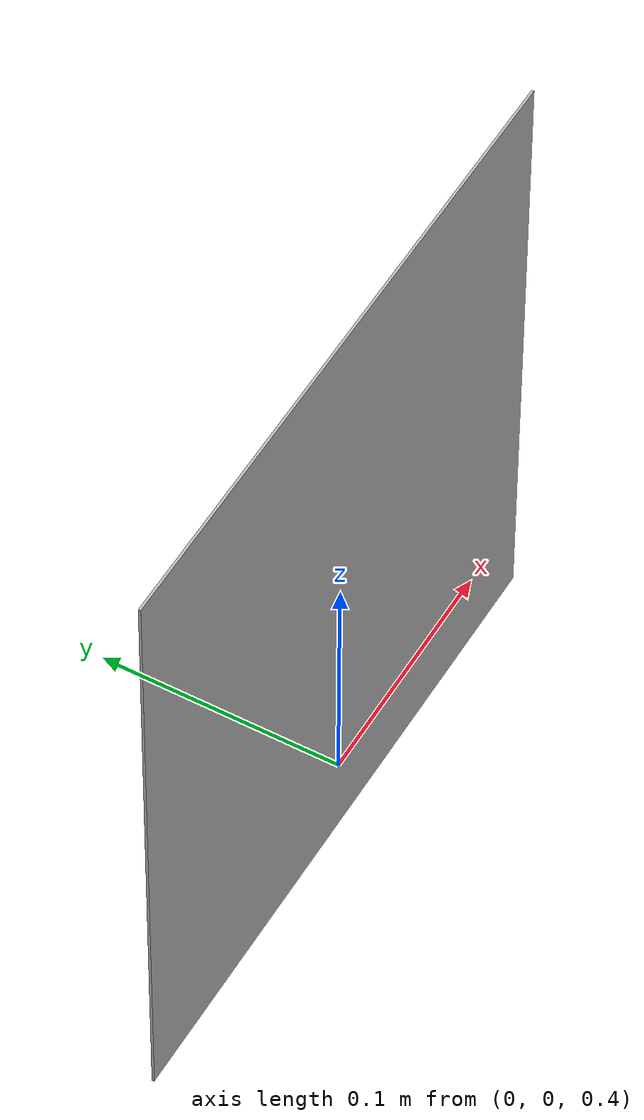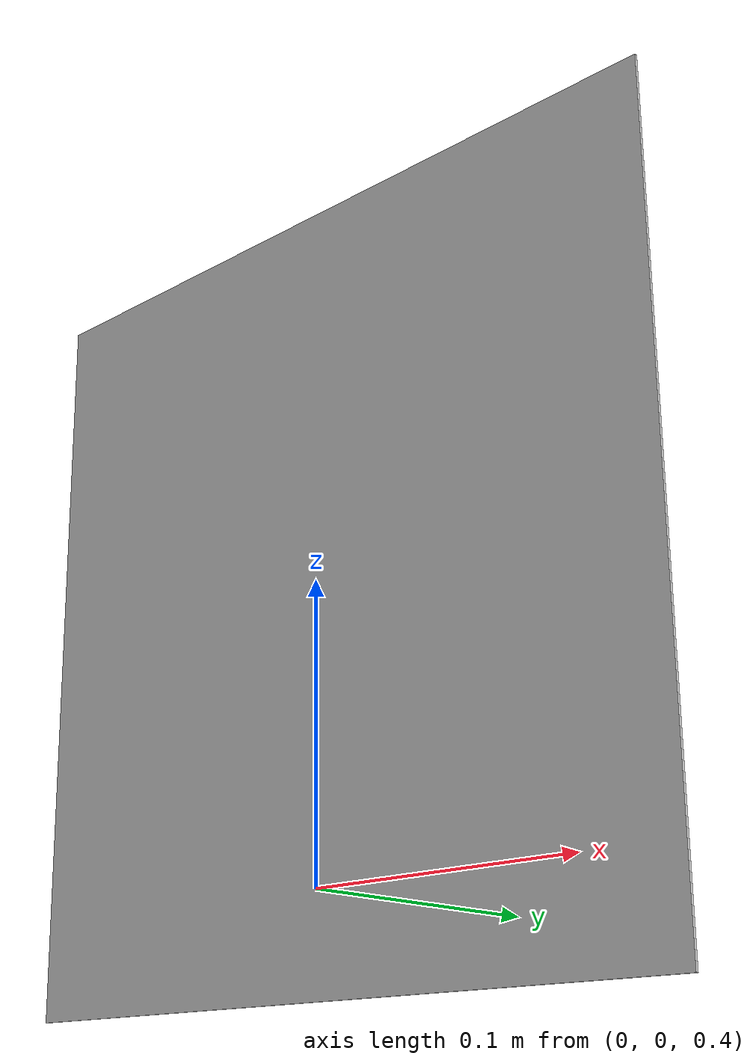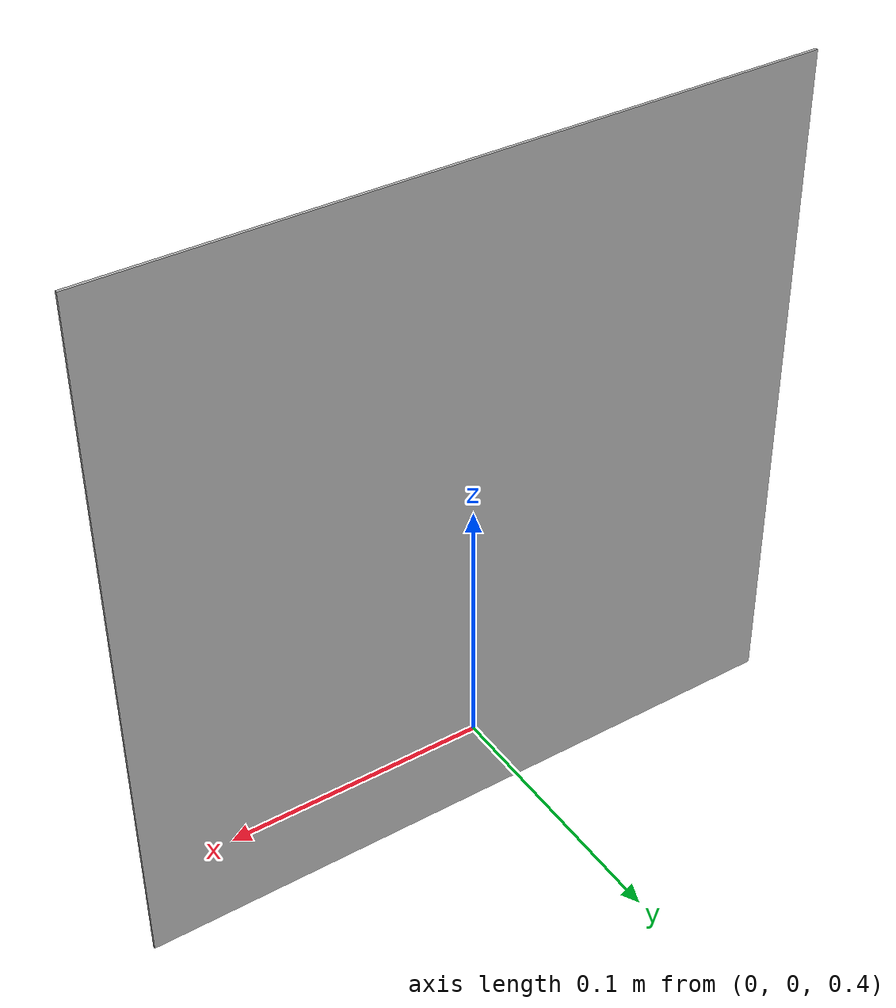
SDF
<?xml version='1.0'?>﻿    <sdf version="1.4">
﻿    <model name="placa_203">
﻿      <pose>0 0 0.5 0 0 0</pose>
﻿      <static>true</static>
﻿        <link name="link">
﻿          <collision name="collision">
﻿            <geometry>
﻿              <box>
﻿                <size>0.268 0.001 0.268</size>
﻿              </box>
﻿            </geometry>
﻿          </collision>
﻿          <visual name="visual">
﻿            <geometry>
﻿              <box>
﻿                <size>0.268 0.001 0.268</size>
﻿              </box>
﻿            </geometry>
﻿        <material>
﻿              <script>
﻿                <uri>model://Placa_203/Materials/Scripts</uri>
﻿                <uri>model://Placa_203/Materials/Textures</uri>
﻿                <name>TexturaPlaca_203/Image</name>
﻿              </script>
﻿            </material>
﻿          </visual>
﻿        </link>
﻿      </model>
﻿    </sdf>
